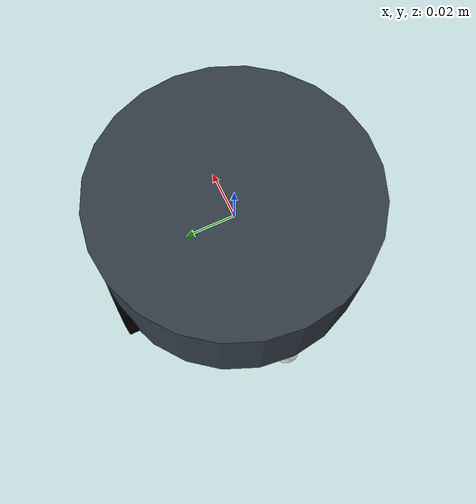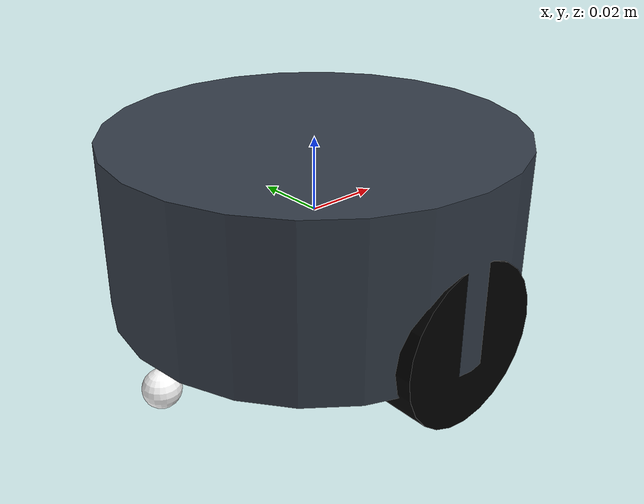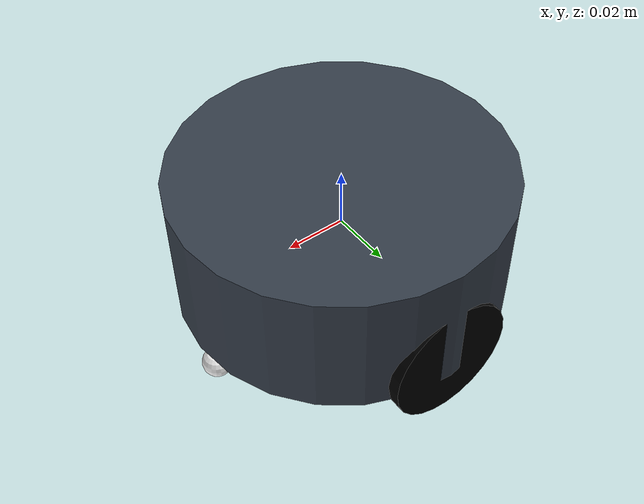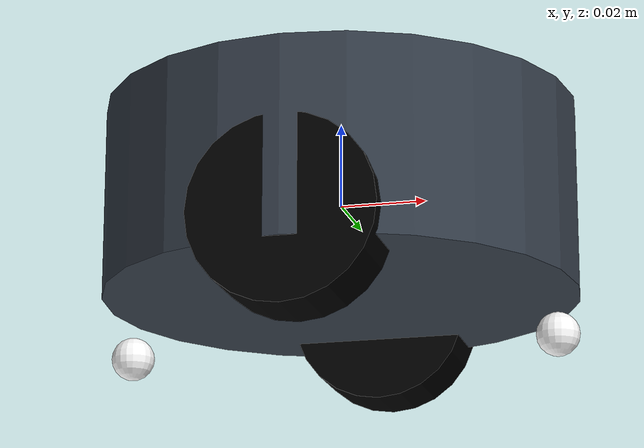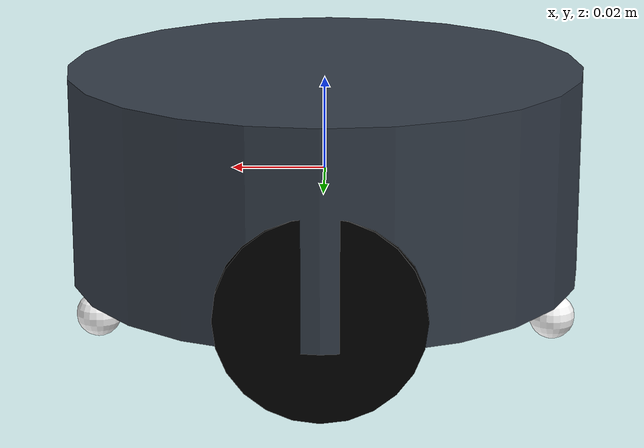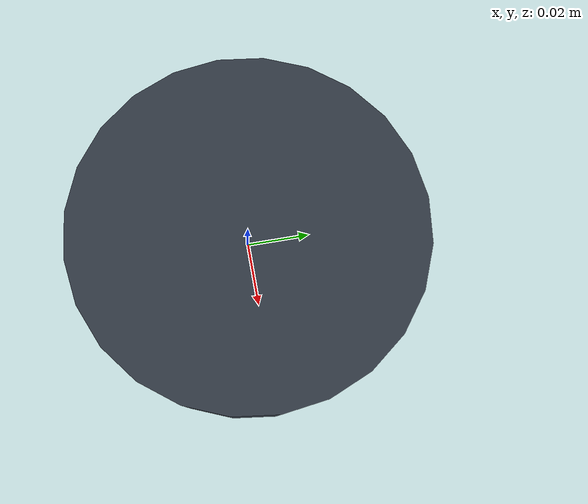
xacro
<?xml version="1.0" ?>

<robot name="alphabot2" xmlns:xacro="https://www.ros.org/wiki/xacro" >
  <material name="black">
    <color rgba="0.0 0.0 0.0 1.0"/>
  </material>
  <material name="blue">
    <color rgba="0.203125 0.23828125 0.28515625 1.0"/>
  </material>
  <material name="green">
    <color rgba="0.0 0.8 0.0 1.0"/>
  </material>
  <material name="grey">
    <color rgba="0.2 0.2 0.2 1.0"/>
  </material>
  <material name="orange">
    <color rgba="1.0 0.423529411765 0.0392156862745 1.0"/>
  </material>
  <material name="brown">
    <color rgba="0.870588235294 0.811764705882 0.764705882353 1.0"/>
  </material>
  <material name="red">
    <color rgba="0.80078125 0.12890625 0.1328125 1.0"/>
  </material>
  <material name="white">
    <color rgba="1.0 1.0 1.0 1.0"/>
  </material>

  <gazebo reference="link_chassis">
    <material>Gazebo/Blue</material>
  </gazebo>
  <gazebo reference="link_left_wheel">
    <material>Gazebo/Black</material>
  </gazebo>
  <gazebo reference="link_right_wheel">
    <material>Gazebo/Black</material>
  </gazebo>

  <!-- chassis -->
  <link name="link_chassis">
    <!-- pose and inertial -->
    <pose>0 0 0 0 0 0</pose>
    <inertial>
      <mass value="0.145"/>
      <origin rpy="0 0 0" xyz="0 0 0"/>
      <inertia ixx="0.0395416666667" ixy="0" ixz="0" iyy="0.106208333333" iyz="0" izz="0.106208333333"/>
    </inertial>
    <!-- end of pose and inertial -->

    <!-- chassis collision and visual -->
    <collision name="collision_chassis">
      <geometry>
        <cylinder radius="0.055" length="0.045"/>
      </geometry>
    </collision>
    <visual>
      <origin rpy="0 0 0" xyz="0 0 0"/>
      <geometry>
        <cylinder radius="0.055" length="0.045"/>
      </geometry>
      <material name="blue"/>
    </visual>
    <!-- end of chassis collision and visual -->

    <!-- caster front collision and visual -->
    <collision name="caster_front_collision">
      <origin rpy="0 0 0" xyz="0.05 0 -0.0335"/>
      <geometry>
        <sphere radius="0.005"/>
      </geometry>
      <surface>
        <friction>
          <ode>
            <mu>0</mu>
            <mu2>0</mu2>
            <slip1>1.0</slip1>
            <slip2>1.0</slip2>
          </ode>
        </friction>
      </surface>
    </collision>
    <visual name="caster_front_visual">
      <origin rpy="0 0 0" xyz="0.05 0 -0.0335"/>
      <geometry>
        <sphere radius="0.005"/>
      </geometry>
      <material name="white"/>
    </visual>
    <!-- end of caster front collision and visual -->

    <!-- caster back collision and visual -->
    <collision name="caster_back_collision">
      <origin rpy="0 0 0" xyz="-0.05 0 -0.0335"/>
      <geometry>
        <sphere radius="0.005"/>
      </geometry>
      <surface>
        <friction>
          <ode>
            <mu>0</mu>
            <mu2>0</mu2>
            <slip1>1.0</slip1>
            <slip2>1.0</slip2>
          </ode>
        </friction>
      </surface>
    </collision>
    <visual name="caster_back_visual">
      <origin rpy="0 0 0" xyz="-0.05 0 -0.0335"/>
      <geometry>
        <sphere radius="0.005"/>
      </geometry>
      <material name="white"/>
    </visual>
    <!-- end of caster back collision and visual -->
  </link>
  <!-- end of chassis -->

  <!-- right wheel -->
  <link name="link_right_wheel">
    <inertial>
      <mass value="0.025"/>
      <origin rpy="0 1.5707 1.5707" xyz="0 0 0"/>
      <inertia ixx="0.00052666666" ixy="0" ixz="0" iyy="0.00052666666" iyz="0" izz="0.001"/>
    </inertial>

    <collision name="link_right_wheel_collision">
      <origin rpy="0 1.5707 1.5707" xyz="0 0 0" />
      <geometry>
        <cylinder length="0.017" radius="0.021"/>
      </geometry>
    </collision>

    <visual name="link_right_wheel_visual">
      <origin rpy="0 1.5707 1.5707" xyz="0 0 0"/>
      <geometry>
        <cylinder length="0.017" radius="0.021"/>
      </geometry>
      <material name="black"/>
    </visual>
  </link>
  <!-- end of right wheel -->

  <!-- joint for right wheel -->
  <joint name="joint_right_wheel" type="continuous">
    <origin rpy="0 0 0" xyz="0 0.046 -0.016"/>
    <child link="link_right_wheel" />
    <parent link="link_chassis"/>
    <axis rpy="0 0 0" xyz="0 1 0"/>
    <limit effort="10000" velocity="1000"/>
    <joint_properties damping="1.0" friction="1.0" />
  </joint>
  <!-- end of joint for right wheel -->

  <!-- left wheel -->
  <link name="link_left_wheel">
    <inertial>
      <mass value="0.025"/>
      <origin rpy="0 1.5707 1.5707" xyz="0 0 0"/>
      <inertia ixx="0.00052666666" ixy="0" ixz="0" iyy="0.00052666666" iyz="0" izz="0.001"/>
    </inertial>

    <collision name="link_left_wheel_collision">
      <origin rpy="0 1.5707 1.5707" xyz="0 0 0" />
      <geometry>
        <cylinder length="0.017" radius="0.021"/>
      </geometry>
    </collision>

    <visual name="link_left_wheel_visual">
      <origin rpy="0 1.5707 1.5707" xyz="0 0 0"/>
      <geometry>
        <cylinder length="0.017" radius="0.021"/>
      </geometry>
      <material name="black"/>
    </visual>
  </link>
  <!-- end of left wheel -->

  <!-- joint for left wheel -->
  <joint name="joint_left_wheel" type="continuous">
    <origin rpy="0 0 0" xyz="0 -0.046 -0.016"/>
    <child link="link_left_wheel" />
    <parent link="link_chassis"/>
    <axis rpy="0 0 0" xyz="0 1 0"/>
    <limit effort="10000" velocity="1000"/>
    <joint_properties damping="1.0" friction="1.0" />
  </joint>
  <!-- end of joint for left wheel -->

</robot>
